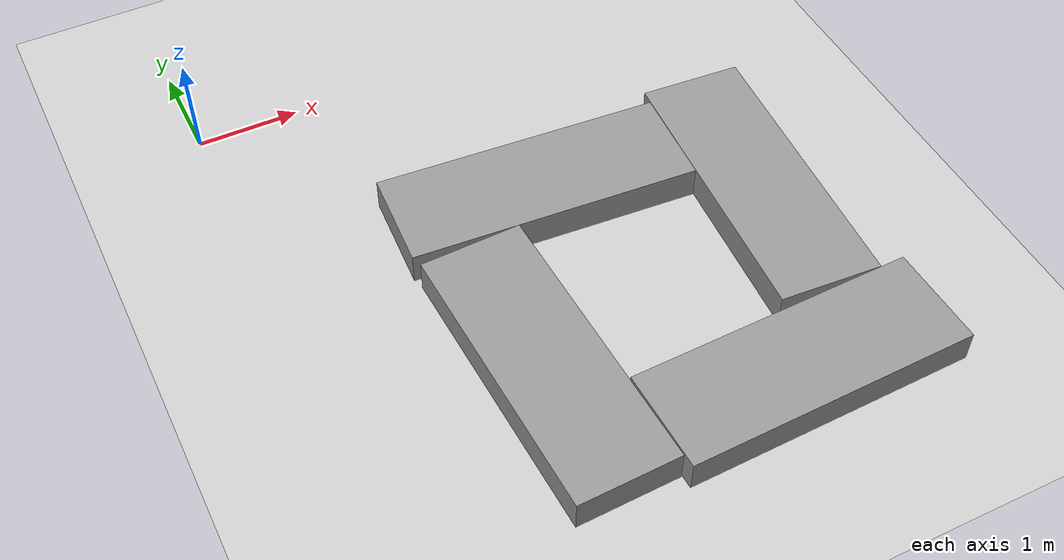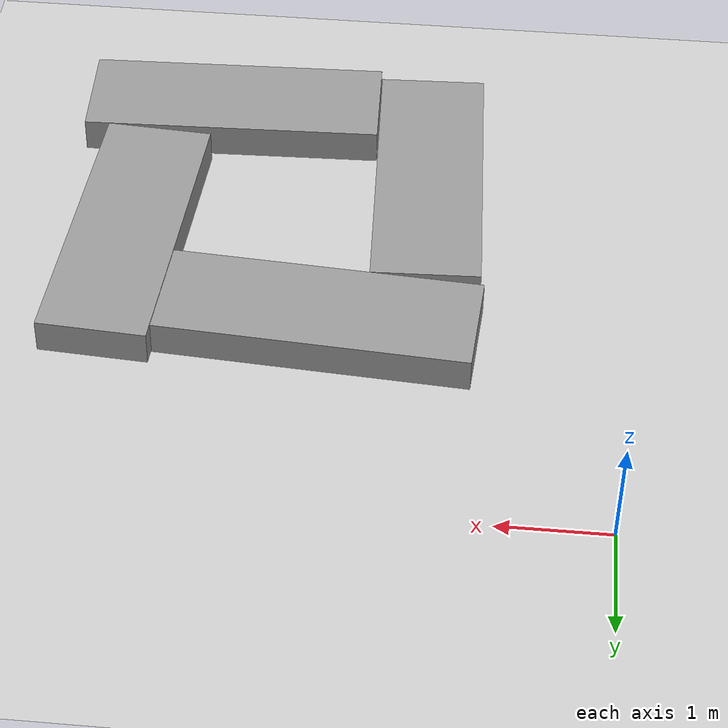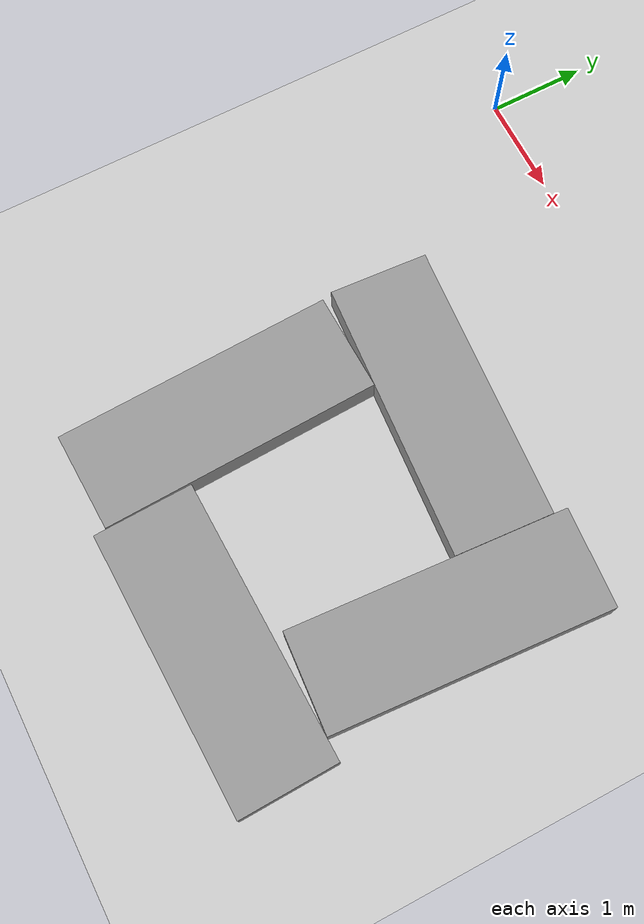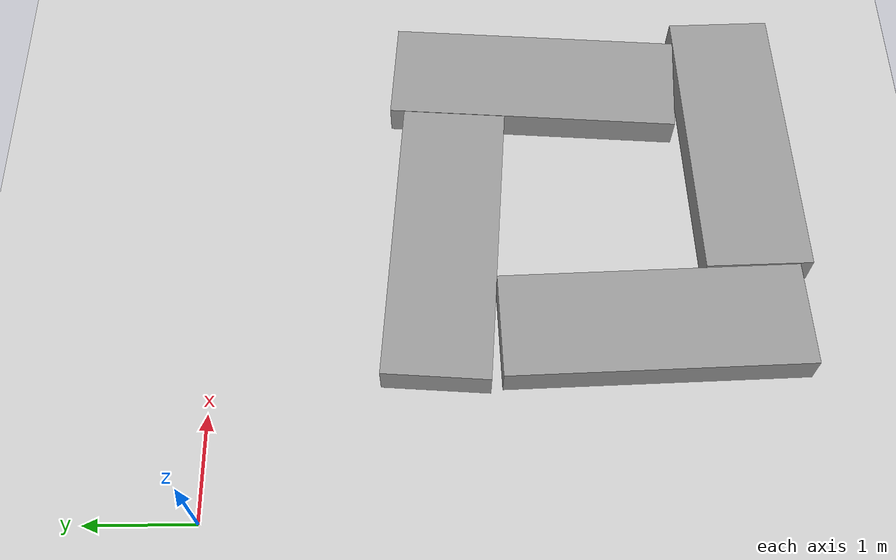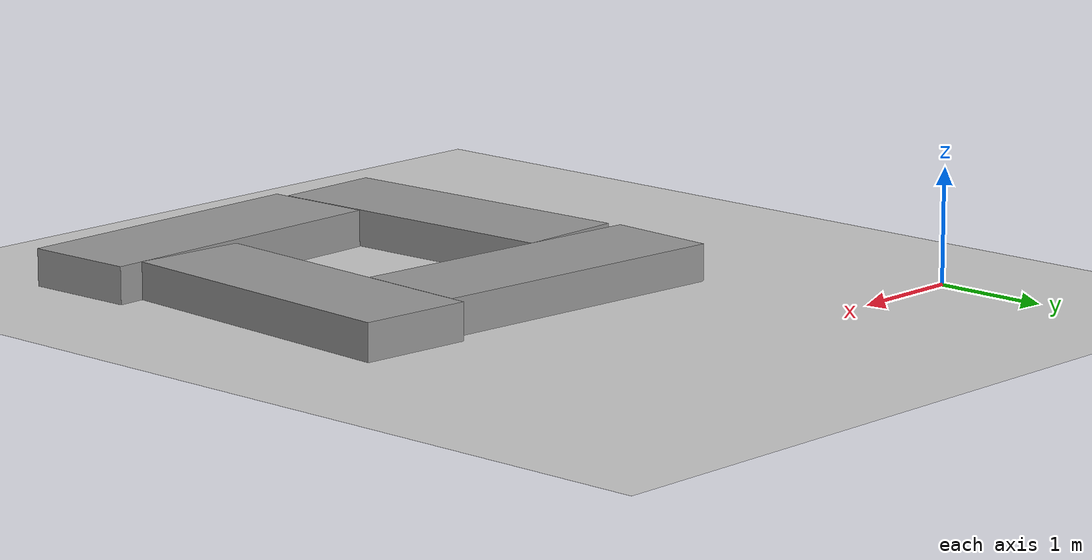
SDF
<sdf version="1.7">
 <world name="default">
  <light name="sun" type="directional">
   <pose>0 0 10 0 -0 0</pose>
   <diffuse>0.8 0.8 0.8 1</diffuse>
   <specular>0.2 0.2 0.2 1</specular>
   <attenuation>
    <range>1000</range>
    <constant>0.9</constant>
    <linear>0.01</linear>
    <quadratic>0.001</quadratic>
   </attenuation>
   <direction>-0.5 0.1 -0.9</direction>
   <spot><inner_angle>0</inner_angle><outer_angle>0</outer_angle><falloff>0</falloff></spot>
  </light>
  <model name="ground_plane">
   <static>1</static>
   <link name="link">
    <collision name="collision">
     <geometry><plane><normal>0 0 1</normal><size>100 100</size></plane></geometry>
     <surface>
      <contact><collide_bitmask>65535</collide_bitmask></contact>
      <friction><ode><mu>100</mu><mu2>50</mu2></ode></friction>
     </surface>
    </collision>
    <visual name="visual">
     <cast_shadows>0</cast_shadows>
     <geometry><plane><normal>0 0 1</normal><size>100 100</size></plane></geometry>
     <material>
      <script><uri>file://media/materials/scripts/gazebo.material</uri><name>Gazebo/Grey</name></script>
     </material>
    </visual>
   </link>
  </model>
  <gravity>0 0 -9.8</gravity>
  <magnetic_field>6e-06 2.3e-05 -4.2e-05</magnetic_field>
  <atmosphere type="adiabatic"/>
  <physics type="ode">
   <max_step_size>0.001</max_step_size>
   <real_time_factor>1</real_time_factor>
   <real_time_update_rate>1000</real_time_update_rate>
  </physics>
  <scene><ambient>0.4 0.4 0.4 1</ambient><background>0.7 0.7 0.7 1</background><shadows>1</shadows></scene>
  <spherical_coordinates>
   <surface_model>EARTH_WGS84</surface_model>
   <latitude_deg>0</latitude_deg>
   <longitude_deg>0</longitude_deg>
   <elevation>0</elevation>
   <heading_deg>0</heading_deg>
  </spherical_coordinates>
  <light name="user_point_light_0" type="point">
   <pose>-138.463 167.008 1 0 -0 0</pose>
   <diffuse>0.5 0.5 0.5 1</diffuse>
   <specular>0.1 0.1 0.1 1</specular>
   <attenuation>
    <range>20</range>
    <constant>0.5</constant>
    <linear>0.01</linear>
    <quadratic>0.001</quadratic>
   </attenuation>
   <cast_shadows>0</cast_shadows>
   <direction>0 0 -1</direction>
  </light>
  <light name="user_point_light_1" type="point">
   <pose>-48.7739 58.9045 1 0 -0 0</pose>
   <diffuse>0.5 0.5 0.5 1</diffuse>
   <specular>0.1 0.1 0.1 1</specular>
   <attenuation>
    <range>20</range>
    <constant>0.5</constant>
    <linear>0.01</linear>
    <quadratic>0.001</quadratic>
   </attenuation>
   <cast_shadows>0</cast_shadows>
   <direction>0 0 -1</direction>
  </light>
  <light name="user_point_light_2" type="point">
   <pose>1.20274 -2.97367 1 0 -0 0</pose>
   <diffuse>0.5 0.5 0.5 1</diffuse>
   <specular>0.1 0.1 0.1 1</specular>
   <attenuation>
    <range>20</range>
    <constant>0.5</constant>
    <linear>0.01</linear>
    <quadratic>0.001</quadratic>
   </attenuation>
   <cast_shadows>0</cast_shadows>
   <direction>0 0 -1</direction>
  </light>
  <model name="unit_box">
   <pose>2.63526 -2.14339 0.161005 -1e-05 -0 -0.068493</pose>
   <link name="link">
    <inertial>
     <mass>1</mass>
     <inertia>
      <ixx>0.166667</ixx>
      <ixy>0</ixy>
      <ixz>0</ixz>
      <iyy>0.166667</iyy>
      <iyz>0</iyz>
      <izz>0.166667</izz>
     </inertia>
    </inertial>
    <collision name="collision"><geometry><box><size>2.82956 1 0.322019</size></box></geometry></collision>
    <visual name="visual">
     <geometry><box><size>2.82956 1 0.322019</size></box></geometry>
     <material>
      <script><name>Gazebo/Grey</name><uri>file://media/materials/scripts/gazebo.material</uri></script>
     </material>
    </visual>
   </link>
  </model>
  <model name="unit_box_clone">
   <pose>3.73581 -5.03007 0.161005 1e-05 -0 0.028063</pose>
   <link name="link">
    <inertial>
     <mass>1</mass>
     <inertia>
      <ixx>0.166667</ixx>
      <ixy>0</ixy>
      <ixz>0</ixz>
      <iyy>0.166667</iyy>
      <iyz>0</iyz>
      <izz>0.166667</izz>
     </inertia>
    </inertial>
    <collision name="collision"><geometry><box><size>2.82956 1 0.32202</size></box></geometry></collision>
    <visual name="visual">
     <geometry><box><size>2.82956 1 0.32202</size></box></geometry>
     <material>
      <script><name>Gazebo/Grey</name><uri>file://media/materials/scripts/gazebo.material</uri></script>
     </material>
    </visual>
   </link>
  </model>
  <model name="unit_box_clone_0">
   <pose>1.77239 -4.04845 0.161003 -1.3e-05 -0 -1.53525</pose>
   <link name="link">
    <inertial>
     <mass>1</mass>
     <inertia>
      <ixx>0.166667</ixx>
      <ixy>0</ixy>
      <ixz>0</ixz>
      <iyy>0.166667</iyy>
      <iyz>0</iyz>
      <izz>0.166667</izz>
     </inertia>
    </inertial>
    <collision name="collision"><geometry><box><size>2.82956 1 0.32202</size></box></geometry></collision>
    <visual name="visual">
     <geometry><box><size>2.82956 1 0.32202</size></box></geometry>
     <material>
      <script><name>Gazebo/Grey</name><uri>file://media/materials/scripts/gazebo.material</uri></script>
     </material>
    </visual>
   </link>
  </model>
  <model name="unit_box_clone_1">
   <pose>4.49569 -3.04926 0.161005 1e-05 -0 -1.63931</pose>
   <link name="link">
    <inertial>
     <mass>1</mass>
     <inertia>
      <ixx>0.166667</ixx>
      <ixy>0</ixy>
      <ixz>0</ixz>
      <iyy>0.166667</iyy>
      <iyz>0</iyz>
      <izz>0.166667</izz>
     </inertia>
    </inertial>
    <collision name="collision"><geometry><box><size>2.82956 1 0.32202</size></box></geometry></collision>
    <visual name="visual">
     <geometry><box><size>2.82956 1 0.32202</size></box></geometry>
     <material>
      <script><name>Gazebo/Grey</name><uri>file://media/materials/scripts/gazebo.material</uri></script>
     </material>
    </visual>
   </link>
  </model>
 </world>
</sdf>
